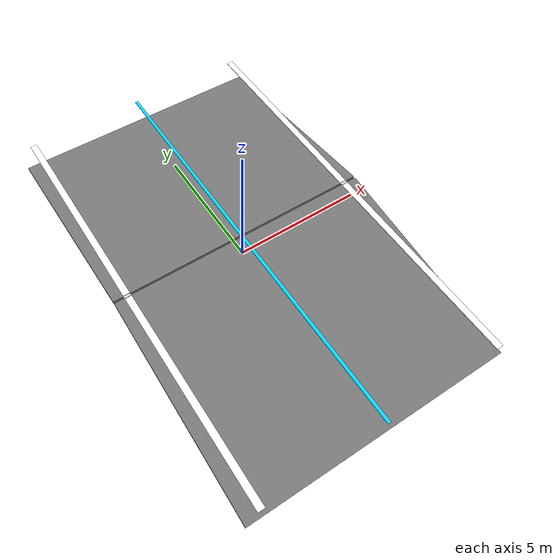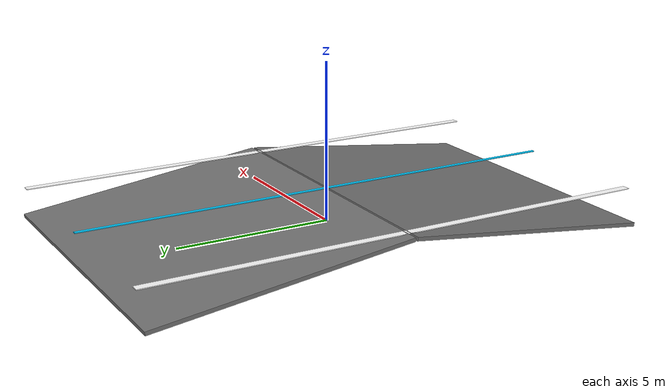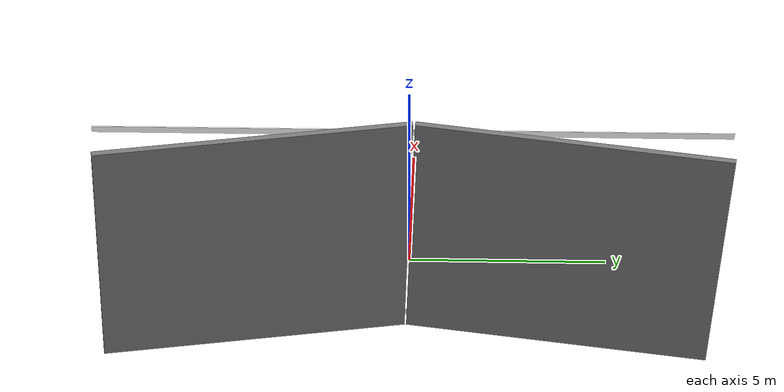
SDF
<?xml version="1.0"?>
<sdf version="1.7">
  <model name="ramp">
    <static>true</static>
    <link name="ramp_wedge">
      <visual name="ramp_wedge_incline">
        <pose>0 -4 0.5 0.124355 0 0</pose>
        <geometry><box><size>10 8 0.12</size></box></geometry>
        <material><ambient>0.45 0.45 0.45 1</ambient><diffuse>0.45 0.45 0.45 1</diffuse></material>
      </visual>
      <collision name="ramp_wedge_incline_collision">
        <pose>0 -4 0.5 0.124355 0 0</pose>
        <geometry><box><size>10 8 0.12</size></box></geometry>
      </collision>
      <visual name="ramp_wedge_decline">
        <pose>0 4 0.5 -0.124355 0 0</pose>
        <geometry><box><size>10 8 0.12</size></box></geometry>
        <material><ambient>0.45 0.45 0.45 1</ambient><diffuse>0.45 0.45 0.45 1</diffuse></material>
      </visual>
      <collision name="ramp_wedge_decline_collision">
        <pose>0 4 0.5 -0.124355 0 0</pose>
        <geometry><box><size>10 8 0.12</size></box></geometry>
      </collision>
      <visual name="ramp_lane_left">
        <pose>-4.5 0 1.04 0 0 0</pose>
        <geometry><box><size>0.25 16 0.025</size></box></geometry>
        <material><ambient>1 1 1 1</ambient><diffuse>1 1 1 1</diffuse></material>
      </visual>
      <visual name="ramp_lane_right">
        <pose>4.5 0 1.04 0 0 0</pose>
        <geometry><box><size>0.25 16 0.025</size></box></geometry>
        <material><ambient>1 1 1 1</ambient><diffuse>1 1 1 1</diffuse></material>
      </visual>
      <visual name="ramp_centerline">
        <pose>0 0 1.05 0 0 0</pose>
        <geometry><box><size>0.12 16 0.025</size></box></geometry>
        <material><ambient>0 0.8 1 1</ambient><diffuse>0 0.8 1 1</diffuse></material>
      </visual>
    </link>
  </model>
</sdf>
